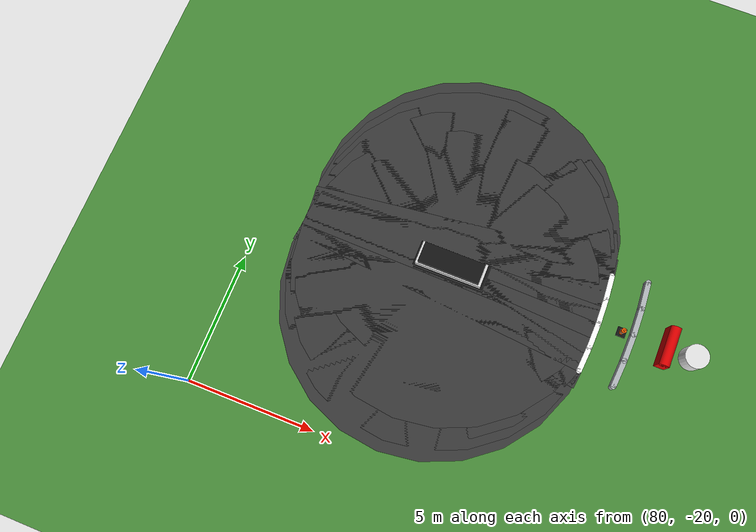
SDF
<sdf version="1.6">
 <world name="sem_silesia_ring_2026">
  <model name="ground_plane">
   <static>true</static>
   <link name="link">
    <collision name="collision">
     <geometry><plane><normal>0 0 1</normal><size>600 600</size></plane></geometry>
     <surface><friction><ode><mu>0.6</mu><mu2>0.6</mu2></ode></friction></surface>
    </collision>
    <visual name="visual">
     <geometry><plane><normal>0 0 1</normal><size>600 600</size></plane></geometry>
     <material><ambient>0.28 0.55 0.22 1</ambient><diffuse>0.28 0.55 0.22 1</diffuse></material>
    </visual>
   </link>
  </model>
  <model name="road_R_s41">
   <static>true</static>
   <pose>87.4068 -14.0234 0.0030 0 0 1.4486</pose>
   <link name="link">
    <visual name="v">
     <geometry><box><size>0.6957 12.0000 0.0060</size></box></geometry>
     <material><ambient>0.22 0.22 0.22 1</ambient><diffuse>0.22 0.22 0.22 1</diffuse></material>
    </visual>
    <collision name="c">
     <geometry><box><size>0.6957 12.0000 0.0060</size></box></geometry>
     <surface><friction><ode><mu>0.9</mu><mu2>0.9</mu2></ode></friction></surface>
    </collision>
   </link>
  </model>
  <model name="road_R_jnt42">
   <static>true</static>
   <pose>87.4315 -13.8066 0.0030 0 0 0</pose>
   <link name="link">
    <visual name="v">
     <geometry><cylinder><radius>6.0000</radius><length>0.0060</length></cylinder></geometry>
     <material><ambient>0.22 0.22 0.22 1</ambient><diffuse>0.22 0.22 0.22 1</diffuse></material>
    </visual>
    <collision name="c">
     <geometry><cylinder><radius>6.0000</radius><length>0.0060</length></cylinder></geometry>
     <surface><friction><ode><mu>0.9</mu><mu2>0.9</mu2></ode></friction></surface>
    </collision>
   </link>
  </model>
  <model name="road_R_s42">
   <static>true</static>
   <pose>87.4524 -13.5894 0.0030 0 0 1.4835</pose>
   <link name="link">
    <visual name="v">
     <geometry><box><size>0.6957 12.0000 0.0060</size></box></geometry>
     <material><ambient>0.22 0.22 0.22 1</ambient><diffuse>0.22 0.22 0.22 1</diffuse></material>
    </visual>
    <collision name="c">
     <geometry><box><size>0.6957 12.0000 0.0060</size></box></geometry>
     <surface><friction><ode><mu>0.9</mu><mu2>0.9</mu2></ode></friction></surface>
    </collision>
   </link>
  </model>
  <model name="road_R_jnt43">
   <static>true</static>
   <pose>87.4696 -13.3720 0.0030 0 0 0</pose>
   <link name="link">
    <visual name="v">
     <geometry><cylinder><radius>6.0000</radius><length>0.0060</length></cylinder></geometry>
     <material><ambient>0.22 0.22 0.22 1</ambient><diffuse>0.22 0.22 0.22 1</diffuse></material>
    </visual>
    <collision name="c">
     <geometry><cylinder><radius>6.0000</radius><length>0.0060</length></cylinder></geometry>
     <surface><friction><ode><mu>0.9</mu><mu2>0.9</mu2></ode></friction></surface>
    </collision>
   </link>
  </model>
  <model name="road_R_s43">
   <static>true</static>
   <pose>87.4829 -13.1542 0.0030 0 0 1.5184</pose>
   <link name="link">
    <visual name="v">
     <geometry><box><size>0.6957 12.0000 0.0060</size></box></geometry>
     <material><ambient>0.22 0.22 0.22 1</ambient><diffuse>0.22 0.22 0.22 1</diffuse></material>
    </visual>
    <collision name="c">
     <geometry><box><size>0.6957 12.0000 0.0060</size></box></geometry>
     <surface><friction><ode><mu>0.9</mu><mu2>0.9</mu2></ode></friction></surface>
    </collision>
   </link>
  </model>
  <model name="road_R_jnt44">
   <static>true</static>
   <pose>87.4924 -12.9362 0.0030 0 0 0</pose>
   <link name="link">
    <visual name="v">
     <geometry><cylinder><radius>6.0000</radius><length>0.0060</length></cylinder></geometry>
     <material><ambient>0.22 0.22 0.22 1</ambient><diffuse>0.22 0.22 0.22 1</diffuse></material>
    </visual>
    <collision name="c">
     <geometry><cylinder><radius>6.0000</radius><length>0.0060</length></cylinder></geometry>
     <surface><friction><ode><mu>0.9</mu><mu2>0.9</mu2></ode></friction></surface>
    </collision>
   </link>
  </model>
  <model name="road_R_s44">
   <static>true</static>
   <pose>87.4981 -12.7182 0.0030 0 0 1.5533</pose>
   <link name="link">
    <visual name="v">
     <geometry><box><size>0.6957 12.0000 0.0060</size></box></geometry>
     <material><ambient>0.22 0.22 0.22 1</ambient><diffuse>0.22 0.22 0.22 1</diffuse></material>
    </visual>
    <collision name="c">
     <geometry><box><size>0.6957 12.0000 0.0060</size></box></geometry>
     <surface><friction><ode><mu>0.9</mu><mu2>0.9</mu2></ode></friction></surface>
    </collision>
   </link>
  </model>
  <model name="road_R_jnt45">
   <static>true</static>
   <pose>87.5000 -12.5000 0.0030 0 0 0</pose>
   <link name="link">
    <visual name="v">
     <geometry><cylinder><radius>6.0000</radius><length>0.0060</length></cylinder></geometry>
     <material><ambient>0.22 0.22 0.22 1</ambient><diffuse>0.22 0.22 0.22 1</diffuse></material>
    </visual>
    <collision name="c">
     <geometry><cylinder><radius>6.0000</radius><length>0.0060</length></cylinder></geometry>
     <surface><friction><ode><mu>0.9</mu><mu2>0.9</mu2></ode></friction></surface>
    </collision>
   </link>
  </model>
  <model name="road_R_s45">
   <static>true</static>
   <pose>87.4981 -12.2818 0.0030 0 0 1.5882</pose>
   <link name="link">
    <visual name="v">
     <geometry><box><size>0.6957 12.0000 0.0060</size></box></geometry>
     <material><ambient>0.22 0.22 0.22 1</ambient><diffuse>0.22 0.22 0.22 1</diffuse></material>
    </visual>
    <collision name="c">
     <geometry><box><size>0.6957 12.0000 0.0060</size></box></geometry>
     <surface><friction><ode><mu>0.9</mu><mu2>0.9</mu2></ode></friction></surface>
    </collision>
   </link>
  </model>
  <model name="road_R_jnt46">
   <static>true</static>
   <pose>87.4924 -12.0638 0.0030 0 0 0</pose>
   <link name="link">
    <visual name="v">
     <geometry><cylinder><radius>6.0000</radius><length>0.0060</length></cylinder></geometry>
     <material><ambient>0.22 0.22 0.22 1</ambient><diffuse>0.22 0.22 0.22 1</diffuse></material>
    </visual>
    <collision name="c">
     <geometry><cylinder><radius>6.0000</radius><length>0.0060</length></cylinder></geometry>
     <surface><friction><ode><mu>0.9</mu><mu2>0.9</mu2></ode></friction></surface>
    </collision>
   </link>
  </model>
  <model name="road_R_s46">
   <static>true</static>
   <pose>87.4829 -11.8458 0.0030 0 0 1.6232</pose>
   <link name="link">
    <visual name="v">
     <geometry><box><size>0.6957 12.0000 0.0060</size></box></geometry>
     <material><ambient>0.22 0.22 0.22 1</ambient><diffuse>0.22 0.22 0.22 1</diffuse></material>
    </visual>
    <collision name="c">
     <geometry><box><size>0.6957 12.0000 0.0060</size></box></geometry>
     <surface><friction><ode><mu>0.9</mu><mu2>0.9</mu2></ode></friction></surface>
    </collision>
   </link>
  </model>
  <model name="road_R_jnt47">
   <static>true</static>
   <pose>87.4696 -11.6280 0.0030 0 0 0</pose>
   <link name="link">
    <visual name="v">
     <geometry><cylinder><radius>6.0000</radius><length>0.0060</length></cylinder></geometry>
     <material><ambient>0.22 0.22 0.22 1</ambient><diffuse>0.22 0.22 0.22 1</diffuse></material>
    </visual>
    <collision name="c">
     <geometry><cylinder><radius>6.0000</radius><length>0.0060</length></cylinder></geometry>
     <surface><friction><ode><mu>0.9</mu><mu2>0.9</mu2></ode></friction></surface>
    </collision>
   </link>
  </model>
  <model name="road_R_s47">
   <static>true</static>
   <pose>87.4524 -11.4106 0.0030 0 0 1.6581</pose>
   <link name="link">
    <visual name="v">
     <geometry><box><size>0.6957 12.0000 0.0060</size></box></geometry>
     <material><ambient>0.22 0.22 0.22 1</ambient><diffuse>0.22 0.22 0.22 1</diffuse></material>
    </visual>
    <collision name="c">
     <geometry><box><size>0.6957 12.0000 0.0060</size></box></geometry>
     <surface><friction><ode><mu>0.9</mu><mu2>0.9</mu2></ode></friction></surface>
    </collision>
   </link>
  </model>
  <model name="road_R_jnt48">
   <static>true</static>
   <pose>87.4315 -11.1934 0.0030 0 0 0</pose>
   <link name="link">
    <visual name="v">
     <geometry><cylinder><radius>6.0000</radius><length>0.0060</length></cylinder></geometry>
     <material><ambient>0.22 0.22 0.22 1</ambient><diffuse>0.22 0.22 0.22 1</diffuse></material>
    </visual>
    <collision name="c">
     <geometry><cylinder><radius>6.0000</radius><length>0.0060</length></cylinder></geometry>
     <surface><friction><ode><mu>0.9</mu><mu2>0.9</mu2></ode></friction></surface>
    </collision>
   </link>
  </model>
  <model name="road_R_s48">
   <static>true</static>
   <pose>87.4068 -10.9766 0.0030 0 0 1.6930</pose>
   <link name="link">
    <visual name="v">
     <geometry><box><size>0.6957 12.0000 0.0060</size></box></geometry>
     <material><ambient>0.22 0.22 0.22 1</ambient><diffuse>0.22 0.22 0.22 1</diffuse></material>
    </visual>
    <collision name="c">
     <geometry><box><size>0.6957 12.0000 0.0060</size></box></geometry>
     <surface><friction><ode><mu>0.9</mu><mu2>0.9</mu2></ode></friction></surface>
    </collision>
   </link>
  </model>
  <model name="road_R_jnt49">
   <static>true</static>
   <pose>87.3784 -10.7603 0.0030 0 0 0</pose>
   <link name="link">
    <visual name="v">
     <geometry><cylinder><radius>6.0000</radius><length>0.0060</length></cylinder></geometry>
     <material><ambient>0.22 0.22 0.22 1</ambient><diffuse>0.22 0.22 0.22 1</diffuse></material>
    </visual>
    <collision name="c">
     <geometry><cylinder><radius>6.0000</radius><length>0.0060</length></cylinder></geometry>
     <surface><friction><ode><mu>0.9</mu><mu2>0.9</mu2></ode></friction></surface>
    </collision>
   </link>
  </model>
  <model name="wl_Ro_jnt28">
   <static>true</static>
   <pose>93.2992 -14.4233 0.0050 0 0 0</pose>
   <link name="link">
    <visual name="v">
     <geometry><cylinder><radius>0.1000</radius><length>0.0040</length></cylinder></geometry>
     <material><ambient>1 1 1 1</ambient><diffuse>1 1 1 1</diffuse></material>
    </visual>
    <collision name="c">
     <geometry><cylinder><radius>0.1000</radius><length>0.0040</length></cylinder></geometry>
     <surface><friction><ode><mu>0.9</mu><mu2>0.9</mu2></ode></friction></surface>
    </collision>
   </link>
  </model>
  <model name="wl_Ro_s28">
   <static>true</static>
   <pose>93.3433 -13.9436 0.0050 0 0 1.4923</pose>
   <link name="link">
    <visual name="v">
     <geometry><box><size>1.0185 0.2000 0.0040</size></box></geometry>
     <material><ambient>1 1 1 1</ambient><diffuse>1 1 1 1</diffuse></material>
    </visual>
    <collision name="c">
     <geometry><box><size>1.0185 0.2000 0.0040</size></box></geometry>
     <surface><friction><ode><mu>0.9</mu><mu2>0.9</mu2></ode></friction></surface>
    </collision>
   </link>
  </model>
  <model name="wl_Ro_jnt29">
   <static>true</static>
   <pose>93.3748 -13.4630 0.0050 0 0 0</pose>
   <link name="link">
    <visual name="v">
     <geometry><cylinder><radius>0.1000</radius><length>0.0040</length></cylinder></geometry>
     <material><ambient>1 1 1 1</ambient><diffuse>1 1 1 1</diffuse></material>
    </visual>
    <collision name="c">
     <geometry><cylinder><radius>0.1000</radius><length>0.0040</length></cylinder></geometry>
     <surface><friction><ode><mu>0.9</mu><mu2>0.9</mu2></ode></friction></surface>
    </collision>
   </link>
  </model>
  <model name="wl_Ro_s29">
   <static>true</static>
   <pose>93.3937 -12.9817 0.0050 0 0 1.5446</pose>
   <link name="link">
    <visual name="v">
     <geometry><box><size>1.0185 0.2000 0.0040</size></box></geometry>
     <material><ambient>1 1 1 1</ambient><diffuse>1 1 1 1</diffuse></material>
    </visual>
    <collision name="c">
     <geometry><box><size>1.0185 0.2000 0.0040</size></box></geometry>
     <surface><friction><ode><mu>0.9</mu><mu2>0.9</mu2></ode></friction></surface>
    </collision>
   </link>
  </model>
  <model name="wl_Ro_jnt30">
   <static>true</static>
   <pose>93.4000 -12.5000 0.0050 0 0 0</pose>
   <link name="link">
    <visual name="v">
     <geometry><cylinder><radius>0.1000</radius><length>0.0040</length></cylinder></geometry>
     <material><ambient>1 1 1 1</ambient><diffuse>1 1 1 1</diffuse></material>
    </visual>
    <collision name="c">
     <geometry><cylinder><radius>0.1000</radius><length>0.0040</length></cylinder></geometry>
     <surface><friction><ode><mu>0.9</mu><mu2>0.9</mu2></ode></friction></surface>
    </collision>
   </link>
  </model>
  <model name="wl_Ro_s30">
   <static>true</static>
   <pose>93.3937 -12.0183 0.0050 0 0 1.5970</pose>
   <link name="link">
    <visual name="v">
     <geometry><box><size>1.0185 0.2000 0.0040</size></box></geometry>
     <material><ambient>1 1 1 1</ambient><diffuse>1 1 1 1</diffuse></material>
    </visual>
    <collision name="c">
     <geometry><box><size>1.0185 0.2000 0.0040</size></box></geometry>
     <surface><friction><ode><mu>0.9</mu><mu2>0.9</mu2></ode></friction></surface>
    </collision>
   </link>
  </model>
  <model name="wl_Ro_jnt31">
   <static>true</static>
   <pose>93.3748 -11.5370 0.0050 0 0 0</pose>
   <link name="link">
    <visual name="v">
     <geometry><cylinder><radius>0.1000</radius><length>0.0040</length></cylinder></geometry>
     <material><ambient>1 1 1 1</ambient><diffuse>1 1 1 1</diffuse></material>
    </visual>
    <collision name="c">
     <geometry><cylinder><radius>0.1000</radius><length>0.0040</length></cylinder></geometry>
     <surface><friction><ode><mu>0.9</mu><mu2>0.9</mu2></ode></friction></surface>
    </collision>
   </link>
  </model>
  <model name="wl_Ro_s31">
   <static>true</static>
   <pose>93.3433 -11.0564 0.0050 0 0 1.6493</pose>
   <link name="link">
    <visual name="v">
     <geometry><box><size>1.0185 0.2000 0.0040</size></box></geometry>
     <material><ambient>1 1 1 1</ambient><diffuse>1 1 1 1</diffuse></material>
    </visual>
    <collision name="c">
     <geometry><box><size>1.0185 0.2000 0.0040</size></box></geometry>
     <surface><friction><ode><mu>0.9</mu><mu2>0.9</mu2></ode></friction></surface>
    </collision>
   </link>
  </model>
  <model name="wl_Ro_jnt32">
   <static>true</static>
   <pose>93.2992 -10.5767 0.0050 0 0 0</pose>
   <link name="link">
    <visual name="v">
     <geometry><cylinder><radius>0.1000</radius><length>0.0040</length></cylinder></geometry>
     <material><ambient>1 1 1 1</ambient><diffuse>1 1 1 1</diffuse></material>
    </visual>
    <collision name="c">
     <geometry><cylinder><radius>0.1000</radius><length>0.0040</length></cylinder></geometry>
     <surface><friction><ode><mu>0.9</mu><mu2>0.9</mu2></ode></friction></surface>
    </collision>
   </link>
  </model>
  <model name="arm_Ro_jnt28">
   <static>true</static>
   <pose>94.5921 -14.5592 0.2250 0 0 0</pose>
   <link name="link">
    <visual name="v">
     <geometry><cylinder><radius>0.1000</radius><length>0.4500</length></cylinder></geometry>
     <material><ambient>0.70 0.72 0.74 1</ambient><diffuse>0.70 0.72 0.74 1</diffuse></material>
    </visual>
    <collision name="c">
     <geometry><cylinder><radius>0.1000</radius><length>0.4500</length></cylinder></geometry>
     <surface><friction><ode><mu>0.9</mu><mu2>0.9</mu2></ode></friction></surface>
    </collision>
   </link>
  </model>
  <model name="arm_Ro_s28">
   <static>true</static>
   <pose>94.6393 -14.0456 0.2250 0 0 1.4923</pose>
   <link name="link">
    <visual name="v">
     <geometry><box><size>1.0866 0.2000 0.4500</size></box></geometry>
     <material><ambient>0.70 0.72 0.74 1</ambient><diffuse>0.70 0.72 0.74 1</diffuse></material>
    </visual>
    <collision name="c">
     <geometry><box><size>1.0866 0.2000 0.4500</size></box></geometry>
     <surface><friction><ode><mu>0.9</mu><mu2>0.9</mu2></ode></friction></surface>
    </collision>
   </link>
  </model>
  <model name="arm_Ro_jnt29">
   <static>true</static>
   <pose>94.6730 -13.5310 0.2250 0 0 0</pose>
   <link name="link">
    <visual name="v">
     <geometry><cylinder><radius>0.1000</radius><length>0.4500</length></cylinder></geometry>
     <material><ambient>0.70 0.72 0.74 1</ambient><diffuse>0.70 0.72 0.74 1</diffuse></material>
    </visual>
    <collision name="c">
     <geometry><cylinder><radius>0.1000</radius><length>0.4500</length></cylinder></geometry>
     <surface><friction><ode><mu>0.9</mu><mu2>0.9</mu2></ode></friction></surface>
    </collision>
   </link>
  </model>
  <model name="arm_Ro_s29">
   <static>true</static>
   <pose>94.6932 -13.0157 0.2250 0 0 1.5446</pose>
   <link name="link">
    <visual name="v">
     <geometry><box><size>1.0866 0.2000 0.4500</size></box></geometry>
     <material><ambient>0.70 0.72 0.74 1</ambient><diffuse>0.70 0.72 0.74 1</diffuse></material>
    </visual>
    <collision name="c">
     <geometry><box><size>1.0866 0.2000 0.4500</size></box></geometry>
     <surface><friction><ode><mu>0.9</mu><mu2>0.9</mu2></ode></friction></surface>
    </collision>
   </link>
  </model>
  <model name="arm_Ro_jnt30">
   <static>true</static>
   <pose>94.7000 -12.5000 0.2250 0 0 0</pose>
   <link name="link">
    <visual name="v">
     <geometry><cylinder><radius>0.1000</radius><length>0.4500</length></cylinder></geometry>
     <material><ambient>0.70 0.72 0.74 1</ambient><diffuse>0.70 0.72 0.74 1</diffuse></material>
    </visual>
    <collision name="c">
     <geometry><cylinder><radius>0.1000</radius><length>0.4500</length></cylinder></geometry>
     <surface><friction><ode><mu>0.9</mu><mu2>0.9</mu2></ode></friction></surface>
    </collision>
   </link>
  </model>
  <model name="arm_Ro_s30">
   <static>true</static>
   <pose>94.6932 -11.9843 0.2250 0 0 1.5970</pose>
   <link name="link">
    <visual name="v">
     <geometry><box><size>1.0866 0.2000 0.4500</size></box></geometry>
     <material><ambient>0.70 0.72 0.74 1</ambient><diffuse>0.70 0.72 0.74 1</diffuse></material>
    </visual>
    <collision name="c">
     <geometry><box><size>1.0866 0.2000 0.4500</size></box></geometry>
     <surface><friction><ode><mu>0.9</mu><mu2>0.9</mu2></ode></friction></surface>
    </collision>
   </link>
  </model>
  <model name="arm_Ro_jnt31">
   <static>true</static>
   <pose>94.6730 -11.4690 0.2250 0 0 0</pose>
   <link name="link">
    <visual name="v">
     <geometry><cylinder><radius>0.1000</radius><length>0.4500</length></cylinder></geometry>
     <material><ambient>0.70 0.72 0.74 1</ambient><diffuse>0.70 0.72 0.74 1</diffuse></material>
    </visual>
    <collision name="c">
     <geometry><cylinder><radius>0.1000</radius><length>0.4500</length></cylinder></geometry>
     <surface><friction><ode><mu>0.9</mu><mu2>0.9</mu2></ode></friction></surface>
    </collision>
   </link>
  </model>
  <model name="arm_Ro_s31">
   <static>true</static>
   <pose>94.6393 -10.9544 0.2250 0 0 1.6493</pose>
   <link name="link">
    <visual name="v">
     <geometry><box><size>1.0866 0.2000 0.4500</size></box></geometry>
     <material><ambient>0.70 0.72 0.74 1</ambient><diffuse>0.70 0.72 0.74 1</diffuse></material>
    </visual>
    <collision name="c">
     <geometry><box><size>1.0866 0.2000 0.4500</size></box></geometry>
     <surface><friction><ode><mu>0.9</mu><mu2>0.9</mu2></ode></friction></surface>
    </collision>
   </link>
  </model>
  <model name="arm_Ro_jnt32">
   <static>true</static>
   <pose>94.5921 -10.4408 0.2250 0 0 0</pose>
   <link name="link">
    <visual name="v">
     <geometry><cylinder><radius>0.1000</radius><length>0.4500</length></cylinder></geometry>
     <material><ambient>0.70 0.72 0.74 1</ambient><diffuse>0.70 0.72 0.74 1</diffuse></material>
    </visual>
    <collision name="c">
     <geometry><cylinder><radius>0.1000</radius><length>0.4500</length></cylinder></geometry>
     <surface><friction><ode><mu>0.9</mu><mu2>0.9</mu2></ode></friction></surface>
    </collision>
   </link>
  </model>
  <model name="p_bar_R_arc_4">
   <static>true</static>
   <pose>96.0000 -12.5000 0.4 0 0 1.5708</pose>
   <link name="link">
    <visual name="v">
     <geometry><box><size>1.5 0.4 0.8</size></box></geometry>
     <material><ambient>0.9 0 0 1</ambient><diffuse>0.9 0 0 1</diffuse></material>
    </visual>
    <visual name="top_round">
     <pose>0 0 0.4 0 1.5708 0</pose>
     <geometry><cylinder><radius>0.2</radius><length>1.5</length></cylinder></geometry>
     <material><ambient>0.9 0 0 1</ambient><diffuse>0.9 0 0 1</diffuse></material>
    </visual>
    <collision name="c"><geometry><box><size>1.5 0.4 0.8</size></box></geometry></collision>
   </link>
  </model>
  <model name="cn_Ro_4">
   <static>true</static>
   <pose>94.3000 -12.5000 0 0 0 0</pose>
   <link name="link">
    <visual name="base">
     <pose>0 0 0.03 0 0 0</pose>
     <geometry><box><size>0.35 0.35 0.06</size></box></geometry>
     <material><ambient>0.08 0.08 0.08 1</ambient><diffuse>0.08 0.08 0.08 1</diffuse></material>
    </visual>
    <visual name="body">
     <pose>0 0 0.30 0 0 0</pose>
     <geometry><cylinder><radius>0.09</radius><length>0.50</length></cylinder></geometry>
     <material><ambient>1.0 0.38 0.0 1</ambient><diffuse>1.0 0.38 0.0 1</diffuse></material>
    </visual>
    <visual name="stripe">
     <pose>0 0 0.32 0 0 0</pose>
     <geometry><cylinder><radius>0.095</radius><length>0.12</length></cylinder></geometry>
     <material><ambient>1 1 1 1</ambient><diffuse>1 1 1 1</diffuse></material>
    </visual>
    <visual name="tip">
     <pose>0 0 0.57 0 0 0</pose>
     <geometry><sphere><radius>0.04</radius></sphere></geometry>
     <material><ambient>1.0 0.38 0.0 1</ambient><diffuse>1.0 0.38 0.0 1</diffuse></material>
    </visual>
    <collision name="c">
     <pose>0 0 0.28 0 0 0</pose>
     <geometry><cylinder><radius>0.09</radius><length>0.56</length></cylinder></geometry>
    </collision>
   </link>
  </model>
  <model name="tires_R_apex_base">
   <static>true</static>
   <pose>87.5000 -12.5000 0.2000 0 0 0.0000</pose>
   <link name="link">
    <visual name="v">
     <geometry><box><size>2.8000 1.0000 0.4000</size></box></geometry>
     <material><ambient>0.08 0.08 0.08 1</ambient><diffuse>0.08 0.08 0.08 1</diffuse></material>
    </visual>
    <collision name="c">
     <geometry><box><size>2.8000 1.0000 0.4000</size></box></geometry>
     <surface><friction><ode><mu>0.9</mu><mu2>0.9</mu2></ode></friction></surface>
    </collision>
   </link>
  </model>
  <model name="tires_R_apex_mid">
   <static>true</static>
   <pose>87.5000 -12.5000 0.5500 0 0 0.0000</pose>
   <link name="link">
    <visual name="v">
     <geometry><box><size>2.6000 0.9000 0.3000</size></box></geometry>
     <material><ambient>0.85 0.85 0.85 1</ambient><diffuse>0.85 0.85 0.85 1</diffuse></material>
    </visual>
    <collision name="c">
     <geometry><box><size>2.6000 0.9000 0.3000</size></box></geometry>
     <surface><friction><ode><mu>0.9</mu><mu2>0.9</mu2></ode></friction></surface>
    </collision>
   </link>
  </model>
  <model name="tires_R_apex_top">
   <static>true</static>
   <pose>87.5000 -12.5000 0.8000 0 0 0.0000</pose>
   <link name="link">
    <visual name="v">
     <geometry><box><size>2.4000 0.8000 0.2000</size></box></geometry>
     <material><ambient>0.08 0.08 0.08 1</ambient><diffuse>0.08 0.08 0.08 1</diffuse></material>
    </visual>
    <collision name="c">
     <geometry><box><size>2.4000 0.8000 0.2000</size></box></geometry>
     <surface><friction><ode><mu>0.9</mu><mu2>0.9</mu2></ode></friction></surface>
    </collision>
   </link>
  </model>
  <model name="tire_ring_3">
   <static>true</static>
   <pose>97.0000 -12.5000 0.4500 0 0 0</pose>
   <link name="link">
    <visual name="v">
     <geometry><cylinder><radius>0.4500</radius><length>0.9000</length></cylinder></geometry>
     <material><ambient>0.90 0.90 0.90 1</ambient><diffuse>0.90 0.90 0.90 1</diffuse></material>
    </visual>
    <collision name="c">
     <geometry><cylinder><radius>0.4500</radius><length>0.9000</length></cylinder></geometry>
     <surface><friction><ode><mu>0.9</mu><mu2>0.9</mu2></ode></friction></surface>
    </collision>
   </link>
  </model>
 </world>
</sdf>
